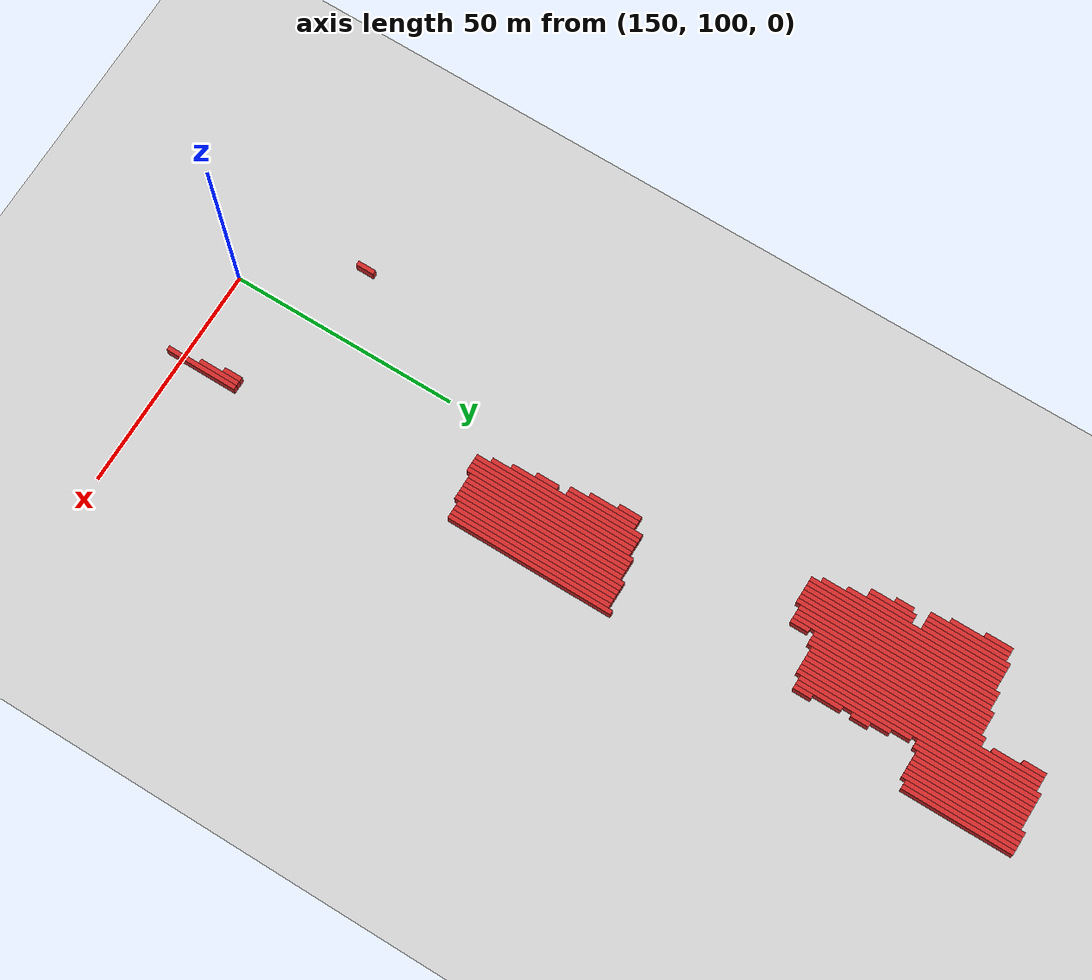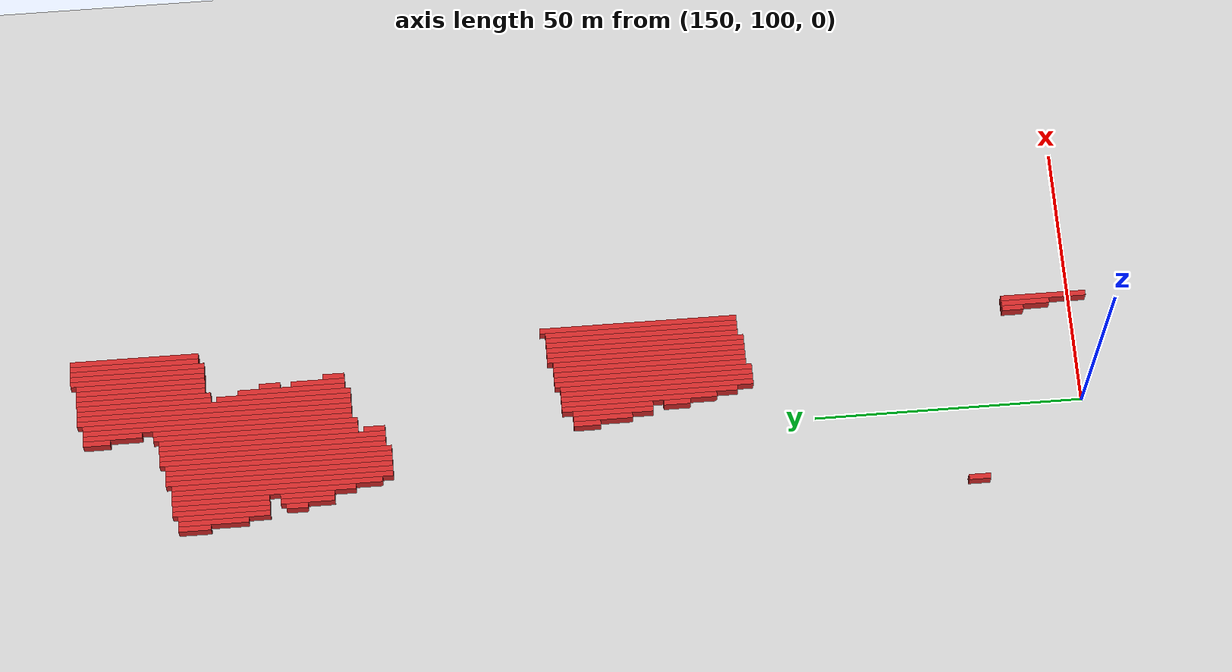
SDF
<sdf version="1.4">
 <world name="1_wall">
  <model name="ground_plane">
   <static>1</static>
   <link name="link">
    <collision name="collision">
     <geometry><plane><normal>0 0 1</normal><size>1000 1000</size></plane></geometry>
     <surface><friction><ode><mu>100</mu><mu2>50</mu2></ode></friction></surface>
    </collision>
    <visual name="visual">
     <cast_shadows>0</cast_shadows>
     <geometry><plane><normal>0 0 1</normal><size>10000 10000</size></plane></geometry>
     <material>
      <script><uri>file://media/materials/scripts/gazebo.material</uri><name>Gazebo/Grey</name></script>
     </material>
    </visual>
    <velocity_decay><linear>0</linear><angular>0</angular></velocity_decay>
   </link>
  </model>
  <model name="Wall_427">
   <static>1</static>
   <link name="Wall_427">
    <collision name="Wall_Collision_427">
     <geometry><box><size>4.0 1.0 2.5</size></box></geometry>
     <pose>0 0 1.25 0 -0 0</pose>
    </collision>
    <visual name="Wall_Visual_427">
     <pose>0 0 1.25 0 -0 0</pose>
     <geometry><box><size>4.0 1.0 2.5</size></box></geometry>
     <material>
      <script><uri>file://media/materials/scripts/gazebo.material</uri><name>Gazebo/Red</name></script>
     </material>
    </visual>
    <velocity_decay><linear>0</linear><angular>0</angular></velocity_decay>
    <pose>135.5 121.0 0 0 0 1.5707963267948966</pose>
   </link>
  </model>
  <model name="Wall_428">
   <static>1</static>
   <link name="Wall_428">
    <collision name="Wall_Collision_428">
     <geometry><box><size>6.0 1.0 2.5</size></box></geometry>
     <pose>0 0 1.25 0 -0 0</pose>
    </collision>
    <visual name="Wall_Visual_428">
     <pose>0 0 1.25 0 -0 0</pose>
     <geometry><box><size>6.0 1.0 2.5</size></box></geometry>
     <material>
      <script><uri>file://media/materials/scripts/gazebo.material</uri><name>Gazebo/Red</name></script>
     </material>
    </visual>
    <velocity_decay><linear>0</linear><angular>0</angular></velocity_decay>
    <pose>136.5 266.0 0 0 0 1.5707963267948966</pose>
   </link>
  </model>
  <model name="Wall_429">
   <static>1</static>
   <link name="Wall_429">
    <collision name="Wall_Collision_429">
     <geometry><box><size>13.0 1.0 2.5</size></box></geometry>
     <pose>0 0 1.25 0 -0 0</pose>
    </collision>
    <visual name="Wall_Visual_429">
     <pose>0 0 1.25 0 -0 0</pose>
     <geometry><box><size>13.0 1.0 2.5</size></box></geometry>
     <material>
      <script><uri>file://media/materials/scripts/gazebo.material</uri><name>Gazebo/Red</name></script>
     </material>
    </visual>
    <velocity_decay><linear>0</linear><angular>0</angular></velocity_decay>
    <pose>137.5 262.5 0 0 0 1.5707963267948966</pose>
   </link>
  </model>
  <model name="Wall_430">
   <static>1</static>
   <link name="Wall_430">
    <collision name="Wall_Collision_430">
     <geometry><box><size>17.0 1.0 2.5</size></box></geometry>
     <pose>0 0 1.25 0 -0 0</pose>
    </collision>
    <visual name="Wall_Visual_430">
     <pose>0 0 1.25 0 -0 0</pose>
     <geometry><box><size>17.0 1.0 2.5</size></box></geometry>
     <material>
      <script><uri>file://media/materials/scripts/gazebo.material</uri><name>Gazebo/Red</name></script>
     </material>
    </visual>
    <velocity_decay><linear>0</linear><angular>0</angular></velocity_decay>
    <pose>138.5 260.5 0 0 0 1.5707963267948966</pose>
   </link>
  </model>
  <model name="Wall_431">
   <static>1</static>
   <link name="Wall_431">
    <collision name="Wall_Collision_431">
     <geometry><box><size>4.0 1.0 2.5</size></box></geometry>
     <pose>0 0 1.25 0 -0 0</pose>
    </collision>
    <visual name="Wall_Visual_431">
     <pose>0 0 1.25 0 -0 0</pose>
     <geometry><box><size>4.0 1.0 2.5</size></box></geometry>
     <material>
      <script><uri>file://media/materials/scripts/gazebo.material</uri><name>Gazebo/Red</name></script>
     </material>
    </visual>
    <velocity_decay><linear>0</linear><angular>0</angular></velocity_decay>
    <pose>139.5 247.0 0 0 0 1.5707963267948966</pose>
   </link>
  </model>
  <model name="Wall_432">
   <static>1</static>
   <link name="Wall_432">
    <collision name="Wall_Collision_432">
     <geometry><box><size>18.0 1.0 2.5</size></box></geometry>
     <pose>0 0 1.25 0 -0 0</pose>
    </collision>
    <visual name="Wall_Visual_432">
     <pose>0 0 1.25 0 -0 0</pose>
     <geometry><box><size>18.0 1.0 2.5</size></box></geometry>
     <material>
      <script><uri>file://media/materials/scripts/gazebo.material</uri><name>Gazebo/Red</name></script>
     </material>
    </visual>
    <velocity_decay><linear>0</linear><angular>0</angular></velocity_decay>
    <pose>139.5 261.0 0 0 0 1.5707963267948966</pose>
   </link>
  </model>
  <model name="Wall_433">
   <static>1</static>
   <link name="Wall_433">
    <collision name="Wall_Collision_433">
     <geometry><box><size>10.0 1.0 2.5</size></box></geometry>
     <pose>0 0 1.25 0 -0 0</pose>
    </collision>
    <visual name="Wall_Visual_433">
     <pose>0 0 1.25 0 -0 0</pose>
     <geometry><box><size>10.0 1.0 2.5</size></box></geometry>
     <material>
      <script><uri>file://media/materials/scripts/gazebo.material</uri><name>Gazebo/Red</name></script>
     </material>
    </visual>
    <velocity_decay><linear>0</linear><angular>0</angular></velocity_decay>
    <pose>140.5 245.0 0 0 0 1.5707963267948966</pose>
   </link>
  </model>
  <model name="Wall_434">
   <static>1</static>
   <link name="Wall_434">
    <collision name="Wall_Collision_434">
     <geometry><box><size>18.0 1.0 2.5</size></box></geometry>
     <pose>0 0 1.25 0 -0 0</pose>
    </collision>
    <visual name="Wall_Visual_434">
     <pose>0 0 1.25 0 -0 0</pose>
     <geometry><box><size>18.0 1.0 2.5</size></box></geometry>
     <material>
      <script><uri>file://media/materials/scripts/gazebo.material</uri><name>Gazebo/Red</name></script>
     </material>
    </visual>
    <velocity_decay><linear>0</linear><angular>0</angular></velocity_decay>
    <pose>140.5 261.0 0 0 0 1.5707963267948966</pose>
   </link>
  </model>
  <model name="Wall_435">
   <static>1</static>
   <link name="Wall_435">
    <collision name="Wall_Collision_435">
     <geometry><box><size>10.0 1.0 2.5</size></box></geometry>
     <pose>0 0 1.25 0 -0 0</pose>
    </collision>
    <visual name="Wall_Visual_435">
     <pose>0 0 1.25 0 -0 0</pose>
     <geometry><box><size>10.0 1.0 2.5</size></box></geometry>
     <material>
      <script><uri>file://media/materials/scripts/gazebo.material</uri><name>Gazebo/Red</name></script>
     </material>
    </visual>
    <velocity_decay><linear>0</linear><angular>0</angular></velocity_decay>
    <pose>141.5 245.0 0 0 0 1.5707963267948966</pose>
   </link>
  </model>
  <model name="Wall_436">
   <static>1</static>
   <link name="Wall_436">
    <collision name="Wall_Collision_436">
     <geometry><box><size>18.0 1.0 2.5</size></box></geometry>
     <pose>0 0 1.25 0 -0 0</pose>
    </collision>
    <visual name="Wall_Visual_436">
     <pose>0 0 1.25 0 -0 0</pose>
     <geometry><box><size>18.0 1.0 2.5</size></box></geometry>
     <material>
      <script><uri>file://media/materials/scripts/gazebo.material</uri><name>Gazebo/Red</name></script>
     </material>
    </visual>
    <velocity_decay><linear>0</linear><angular>0</angular></velocity_decay>
    <pose>141.5 261.0 0 0 0 1.5707963267948966</pose>
   </link>
  </model>
  <model name="Wall_437">
   <static>1</static>
   <link name="Wall_437">
    <collision name="Wall_Collision_437">
     <geometry><box><size>34.0 1.0 2.5</size></box></geometry>
     <pose>0 0 1.25 0 -0 0</pose>
    </collision>
    <visual name="Wall_Visual_437">
     <pose>0 0 1.25 0 -0 0</pose>
     <geometry><box><size>34.0 1.0 2.5</size></box></geometry>
     <material>
      <script><uri>file://media/materials/scripts/gazebo.material</uri><name>Gazebo/Red</name></script>
     </material>
    </visual>
    <velocity_decay><linear>0</linear><angular>0</angular></velocity_decay>
    <pose>142.5 253.0 0 0 0 1.5707963267948966</pose>
   </link>
  </model>
  <model name="Wall_438">
   <static>1</static>
   <link name="Wall_438">
    <collision name="Wall_Collision_438">
     <geometry><box><size>39.0 1.0 2.5</size></box></geometry>
     <pose>0 0 1.25 0 -0 0</pose>
    </collision>
    <visual name="Wall_Visual_438">
     <pose>0 0 1.25 0 -0 0</pose>
     <geometry><box><size>39.0 1.0 2.5</size></box></geometry>
     <material>
      <script><uri>file://media/materials/scripts/gazebo.material</uri><name>Gazebo/Red</name></script>
     </material>
    </visual>
    <velocity_decay><linear>0</linear><angular>0</angular></velocity_decay>
    <pose>143.5 250.5 0 0 0 1.5707963267948966</pose>
   </link>
  </model>
  <model name="Wall_439">
   <static>1</static>
   <link name="Wall_439">
    <collision name="Wall_Collision_439">
     <geometry><box><size>41.0 1.0 2.5</size></box></geometry>
     <pose>0 0 1.25 0 -0 0</pose>
    </collision>
    <visual name="Wall_Visual_439">
     <pose>0 0 1.25 0 -0 0</pose>
     <geometry><box><size>41.0 1.0 2.5</size></box></geometry>
     <material>
      <script><uri>file://media/materials/scripts/gazebo.material</uri><name>Gazebo/Red</name></script>
     </material>
    </visual>
    <velocity_decay><linear>0</linear><angular>0</angular></velocity_decay>
    <pose>144.5 249.5 0 0 0 1.5707963267948966</pose>
   </link>
  </model>
  <model name="Wall_440">
   <static>1</static>
   <link name="Wall_440">
    <collision name="Wall_Collision_440">
     <geometry><box><size>42.0 1.0 2.5</size></box></geometry>
     <pose>0 0 1.25 0 -0 0</pose>
    </collision>
    <visual name="Wall_Visual_440">
     <pose>0 0 1.25 0 -0 0</pose>
     <geometry><box><size>42.0 1.0 2.5</size></box></geometry>
     <material>
      <script><uri>file://media/materials/scripts/gazebo.material</uri><name>Gazebo/Red</name></script>
     </material>
    </visual>
    <velocity_decay><linear>0</linear><angular>0</angular></velocity_decay>
    <pose>145.5 250.0 0 0 0 1.5707963267948966</pose>
   </link>
  </model>
  <model name="Wall_441">
   <static>1</static>
   <link name="Wall_441">
    <collision name="Wall_Collision_441">
     <geometry><box><size>42.0 1.0 2.5</size></box></geometry>
     <pose>0 0 1.25 0 -0 0</pose>
    </collision>
    <visual name="Wall_Visual_441">
     <pose>0 0 1.25 0 -0 0</pose>
     <geometry><box><size>42.0 1.0 2.5</size></box></geometry>
     <material>
      <script><uri>file://media/materials/scripts/gazebo.material</uri><name>Gazebo/Red</name></script>
     </material>
    </visual>
    <velocity_decay><linear>0</linear><angular>0</angular></velocity_decay>
    <pose>146.5 250.0 0 0 0 1.5707963267948966</pose>
   </link>
  </model>
  <model name="Wall_442">
   <static>1</static>
   <link name="Wall_442">
    <collision name="Wall_Collision_442">
     <geometry><box><size>42.0 1.0 2.5</size></box></geometry>
     <pose>0 0 1.25 0 -0 0</pose>
    </collision>
    <visual name="Wall_Visual_442">
     <pose>0 0 1.25 0 -0 0</pose>
     <geometry><box><size>42.0 1.0 2.5</size></box></geometry>
     <material>
      <script><uri>file://media/materials/scripts/gazebo.material</uri><name>Gazebo/Red</name></script>
     </material>
    </visual>
    <velocity_decay><linear>0</linear><angular>0</angular></velocity_decay>
    <pose>147.5 250.0 0 0 0 1.5707963267948966</pose>
   </link>
  </model>
  <model name="Wall_443">
   <static>1</static>
   <link name="Wall_443">
    <collision name="Wall_Collision_443">
     <geometry><box><size>42.0 1.0 2.5</size></box></geometry>
     <pose>0 0 1.25 0 -0 0</pose>
    </collision>
    <visual name="Wall_Visual_443">
     <pose>0 0 1.25 0 -0 0</pose>
     <geometry><box><size>42.0 1.0 2.5</size></box></geometry>
     <material>
      <script><uri>file://media/materials/scripts/gazebo.material</uri><name>Gazebo/Red</name></script>
     </material>
    </visual>
    <velocity_decay><linear>0</linear><angular>0</angular></velocity_decay>
    <pose>148.5 250.0 0 0 0 1.5707963267948966</pose>
   </link>
  </model>
  <model name="Wall_444">
   <static>1</static>
   <link name="Wall_444">
    <collision name="Wall_Collision_444">
     <geometry><box><size>43.0 1.0 2.5</size></box></geometry>
     <pose>0 0 1.25 0 -0 0</pose>
    </collision>
    <visual name="Wall_Visual_444">
     <pose>0 0 1.25 0 -0 0</pose>
     <geometry><box><size>43.0 1.0 2.5</size></box></geometry>
     <material>
      <script><uri>file://media/materials/scripts/gazebo.material</uri><name>Gazebo/Red</name></script>
     </material>
    </visual>
    <velocity_decay><linear>0</linear><angular>0</angular></velocity_decay>
    <pose>149.5 250.5 0 0 0 1.5707963267948966</pose>
   </link>
  </model>
  <model name="Wall_445">
   <static>1</static>
   <link name="Wall_445">
    <collision name="Wall_Collision_445">
     <geometry><box><size>42.0 1.0 2.5</size></box></geometry>
     <pose>0 0 1.25 0 -0 0</pose>
    </collision>
    <visual name="Wall_Visual_445">
     <pose>0 0 1.25 0 -0 0</pose>
     <geometry><box><size>42.0 1.0 2.5</size></box></geometry>
     <material>
      <script><uri>file://media/materials/scripts/gazebo.material</uri><name>Gazebo/Red</name></script>
     </material>
    </visual>
    <velocity_decay><linear>0</linear><angular>0</angular></velocity_decay>
    <pose>150.5 251.0 0 0 0 1.5707963267948966</pose>
   </link>
  </model>
  <model name="Wall_446">
   <static>1</static>
   <link name="Wall_446">
    <collision name="Wall_Collision_446">
     <geometry><box><size>5.0 1.0 2.5</size></box></geometry>
     <pose>0 0 1.25 0 -0 0</pose>
    </collision>
    <visual name="Wall_Visual_446">
     <pose>0 0 1.25 0 -0 0</pose>
     <geometry><box><size>5.0 1.0 2.5</size></box></geometry>
     <material>
      <script><uri>file://media/materials/scripts/gazebo.material</uri><name>Gazebo/Red</name></script>
     </material>
    </visual>
    <velocity_decay><linear>0</linear><angular>0</angular></velocity_decay>
    <pose>151.5 192.5 0 0 0 1.5707963267948966</pose>
   </link>
  </model>
  <model name="Wall_447">
   <static>1</static>
   <link name="Wall_447">
    <collision name="Wall_Collision_447">
     <geometry><box><size>42.0 1.0 2.5</size></box></geometry>
     <pose>0 0 1.25 0 -0 0</pose>
    </collision>
    <visual name="Wall_Visual_447">
     <pose>0 0 1.25 0 -0 0</pose>
     <geometry><box><size>42.0 1.0 2.5</size></box></geometry>
     <material>
      <script><uri>file://media/materials/scripts/gazebo.material</uri><name>Gazebo/Red</name></script>
     </material>
    </visual>
    <velocity_decay><linear>0</linear><angular>0</angular></velocity_decay>
    <pose>151.5 251.0 0 0 0 1.5707963267948966</pose>
   </link>
  </model>
  <model name="Wall_448">
   <static>1</static>
   <link name="Wall_448">
    <collision name="Wall_Collision_448">
     <geometry><box><size>11.0 1.0 2.5</size></box></geometry>
     <pose>0 0 1.25 0 -0 0</pose>
    </collision>
    <visual name="Wall_Visual_448">
     <pose>0 0 1.25 0 -0 0</pose>
     <geometry><box><size>11.0 1.0 2.5</size></box></geometry>
     <material>
      <script><uri>file://media/materials/scripts/gazebo.material</uri><name>Gazebo/Red</name></script>
     </material>
    </visual>
    <velocity_decay><linear>0</linear><angular>0</angular></velocity_decay>
    <pose>152.5 189.5 0 0 0 1.5707963267948966</pose>
   </link>
  </model>
  <model name="Wall_449">
   <static>1</static>
   <link name="Wall_449">
    <collision name="Wall_Collision_449">
     <geometry><box><size>42.0 1.0 2.5</size></box></geometry>
     <pose>0 0 1.25 0 -0 0</pose>
    </collision>
    <visual name="Wall_Visual_449">
     <pose>0 0 1.25 0 -0 0</pose>
     <geometry><box><size>42.0 1.0 2.5</size></box></geometry>
     <material>
      <script><uri>file://media/materials/scripts/gazebo.material</uri><name>Gazebo/Red</name></script>
     </material>
    </visual>
    <velocity_decay><linear>0</linear><angular>0</angular></velocity_decay>
    <pose>152.5 251.0 0 0 0 1.5707963267948966</pose>
   </link>
  </model>
  <model name="Wall_450">
   <static>1</static>
   <link name="Wall_450">
    <collision name="Wall_Collision_450">
     <geometry><box><size>15.0 1.0 2.5</size></box></geometry>
     <pose>0 0 1.25 0 -0 0</pose>
    </collision>
    <visual name="Wall_Visual_450">
     <pose>0 0 1.25 0 -0 0</pose>
     <geometry><box><size>15.0 1.0 2.5</size></box></geometry>
     <material>
      <script><uri>file://media/materials/scripts/gazebo.material</uri><name>Gazebo/Red</name></script>
     </material>
    </visual>
    <velocity_decay><linear>0</linear><angular>0</angular></velocity_decay>
    <pose>153.5 187.5 0 0 0 1.5707963267948966</pose>
   </link>
  </model>
  <model name="Wall_451">
   <static>1</static>
   <link name="Wall_451">
    <collision name="Wall_Collision_451">
     <geometry><box><size>4.0 1.0 2.5</size></box></geometry>
     <pose>0 0 1.25 0 -0 0</pose>
    </collision>
    <visual name="Wall_Visual_451">
     <pose>0 0 1.25 0 -0 0</pose>
     <geometry><box><size>4.0 1.0 2.5</size></box></geometry>
     <material>
      <script><uri>file://media/materials/scripts/gazebo.material</uri><name>Gazebo/Red</name></script>
     </material>
    </visual>
    <velocity_decay><linear>0</linear><angular>0</angular></velocity_decay>
    <pose>153.5 232.0 0 0 0 1.5707963267948966</pose>
   </link>
  </model>
  <model name="Wall_452">
   <static>1</static>
   <link name="Wall_452">
    <collision name="Wall_Collision_452">
     <geometry><box><size>37.0 1.0 2.5</size></box></geometry>
     <pose>0 0 1.25 0 -0 0</pose>
    </collision>
    <visual name="Wall_Visual_452">
     <pose>0 0 1.25 0 -0 0</pose>
     <geometry><box><size>37.0 1.0 2.5</size></box></geometry>
     <material>
      <script><uri>file://media/materials/scripts/gazebo.material</uri><name>Gazebo/Red</name></script>
     </material>
    </visual>
    <velocity_decay><linear>0</linear><angular>0</angular></velocity_decay>
    <pose>153.5 253.5 0 0 0 1.5707963267948966</pose>
   </link>
  </model>
  <model name="Wall_453">
   <static>1</static>
   <link name="Wall_453">
    <collision name="Wall_Collision_453">
     <geometry><box><size>5.0 1.0 2.5</size></box></geometry>
     <pose>0 0 1.25 0 -0 0</pose>
    </collision>
    <visual name="Wall_Visual_453">
     <pose>0 0 1.25 0 -0 0</pose>
     <geometry><box><size>5.0 1.0 2.5</size></box></geometry>
     <material>
      <script><uri>file://media/materials/scripts/gazebo.material</uri><name>Gazebo/Red</name></script>
     </material>
    </visual>
    <velocity_decay><linear>0</linear><angular>0</angular></velocity_decay>
    <pose>154.5 175.5 0 0 0 1.5707963267948966</pose>
   </link>
  </model>
  <model name="Wall_454">
   <static>1</static>
   <link name="Wall_454">
    <collision name="Wall_Collision_454">
     <geometry><box><size>17.0 1.0 2.5</size></box></geometry>
     <pose>0 0 1.25 0 -0 0</pose>
    </collision>
    <visual name="Wall_Visual_454">
     <pose>0 0 1.25 0 -0 0</pose>
     <geometry><box><size>17.0 1.0 2.5</size></box></geometry>
     <material>
      <script><uri>file://media/materials/scripts/gazebo.material</uri><name>Gazebo/Red</name></script>
     </material>
    </visual>
    <velocity_decay><linear>0</linear><angular>0</angular></velocity_decay>
    <pose>154.5 188.5 0 0 0 1.5707963267948966</pose>
   </link>
  </model>
  <model name="Wall_455">
   <static>1</static>
   <link name="Wall_455">
    <collision name="Wall_Collision_455">
     <geometry><box><size>38.0 1.0 2.5</size></box></geometry>
     <pose>0 0 1.25 0 -0 0</pose>
    </collision>
    <visual name="Wall_Visual_455">
     <pose>0 0 1.25 0 -0 0</pose>
     <geometry><box><size>38.0 1.0 2.5</size></box></geometry>
     <material>
      <script><uri>file://media/materials/scripts/gazebo.material</uri><name>Gazebo/Red</name></script>
     </material>
    </visual>
    <velocity_decay><linear>0</linear><angular>0</angular></velocity_decay>
    <pose>154.5 254.0 0 0 0 1.5707963267948966</pose>
   </link>
  </model>
  <model name="Wall_456">
   <static>1</static>
   <link name="Wall_456">
    <collision name="Wall_Collision_456">
     <geometry><box><size>5.0 1.0 2.5</size></box></geometry>
     <pose>0 0 1.25 0 -0 0</pose>
    </collision>
    <visual name="Wall_Visual_456">
     <pose>0 0 1.25 0 -0 0</pose>
     <geometry><box><size>5.0 1.0 2.5</size></box></geometry>
     <material>
      <script><uri>file://media/materials/scripts/gazebo.material</uri><name>Gazebo/Red</name></script>
     </material>
    </visual>
    <velocity_decay><linear>0</linear><angular>0</angular></velocity_decay>
    <pose>154.5 283.5 0 0 0 1.5707963267948966</pose>
   </link>
  </model>
  <model name="Wall_457">
   <static>1</static>
   <link name="Wall_457">
    <collision name="Wall_Collision_457">
     <geometry><box><size>29.0 1.0 2.5</size></box></geometry>
     <pose>0 0 1.25 0 -0 0</pose>
    </collision>
    <visual name="Wall_Visual_457">
     <pose>0 0 1.25 0 -0 0</pose>
     <geometry><box><size>29.0 1.0 2.5</size></box></geometry>
     <material>
      <script><uri>file://media/materials/scripts/gazebo.material</uri><name>Gazebo/Red</name></script>
     </material>
    </visual>
    <velocity_decay><linear>0</linear><angular>0</angular></velocity_decay>
    <pose>155.5 182.5 0 0 0 1.5707963267948966</pose>
   </link>
  </model>
  <model name="Wall_458">
   <static>1</static>
   <link name="Wall_458">
    <collision name="Wall_Collision_458">
     <geometry><box><size>38.0 1.0 2.5</size></box></geometry>
     <pose>0 0 1.25 0 -0 0</pose>
    </collision>
    <visual name="Wall_Visual_458">
     <pose>0 0 1.25 0 -0 0</pose>
     <geometry><box><size>38.0 1.0 2.5</size></box></geometry>
     <material>
      <script><uri>file://media/materials/scripts/gazebo.material</uri><name>Gazebo/Red</name></script>
     </material>
    </visual>
    <velocity_decay><linear>0</linear><angular>0</angular></velocity_decay>
    <pose>155.5 254.0 0 0 0 1.5707963267948966</pose>
   </link>
  </model>
  <model name="Wall_459">
   <static>1</static>
   <link name="Wall_459">
    <collision name="Wall_Collision_459">
     <geometry><box><size>11.0 1.0 2.5</size></box></geometry>
     <pose>0 0 1.25 0 -0 0</pose>
    </collision>
    <visual name="Wall_Visual_459">
     <pose>0 0 1.25 0 -0 0</pose>
     <geometry><box><size>11.0 1.0 2.5</size></box></geometry>
     <material>
      <script><uri>file://media/materials/scripts/gazebo.material</uri><name>Gazebo/Red</name></script>
     </material>
    </visual>
    <velocity_decay><linear>0</linear><angular>0</angular></velocity_decay>
    <pose>155.5 280.5 0 0 0 1.5707963267948966</pose>
   </link>
  </model>
  <model name="Wall_460">
   <static>1</static>
   <link name="Wall_460">
    <collision name="Wall_Collision_460">
     <geometry><box><size>33.0 1.0 2.5</size></box></geometry>
     <pose>0 0 1.25 0 -0 0</pose>
    </collision>
    <visual name="Wall_Visual_460">
     <pose>0 0 1.25 0 -0 0</pose>
     <geometry><box><size>33.0 1.0 2.5</size></box></geometry>
     <material>
      <script><uri>file://media/materials/scripts/gazebo.material</uri><name>Gazebo/Red</name></script>
     </material>
    </visual>
    <velocity_decay><linear>0</linear><angular>0</angular></velocity_decay>
    <pose>156.5 180.5 0 0 0 1.5707963267948966</pose>
   </link>
  </model>
  <model name="Wall_461">
   <static>1</static>
   <link name="Wall_461">
    <collision name="Wall_Collision_461">
     <geometry><box><size>50.0 1.0 2.5</size></box></geometry>
     <pose>0 0 1.25 0 -0 0</pose>
    </collision>
    <visual name="Wall_Visual_461">
     <pose>0 0 1.25 0 -0 0</pose>
     <geometry><box><size>50.0 1.0 2.5</size></box></geometry>
     <material>
      <script><uri>file://media/materials/scripts/gazebo.material</uri><name>Gazebo/Red</name></script>
     </material>
    </visual>
    <velocity_decay><linear>0</linear><angular>0</angular></velocity_decay>
    <pose>156.5 261.0 0 0 0 1.5707963267948966</pose>
   </link>
  </model>
  <model name="Wall_462">
   <static>1</static>
   <link name="Wall_462">
    <collision name="Wall_Collision_462">
     <geometry><box><size>36.0 1.0 2.5</size></box></geometry>
     <pose>0 0 1.25 0 -0 0</pose>
    </collision>
    <visual name="Wall_Visual_462">
     <pose>0 0 1.25 0 -0 0</pose>
     <geometry><box><size>36.0 1.0 2.5</size></box></geometry>
     <material>
      <script><uri>file://media/materials/scripts/gazebo.material</uri><name>Gazebo/Red</name></script>
     </material>
    </visual>
    <velocity_decay><linear>0</linear><angular>0</angular></velocity_decay>
    <pose>157.5 179.0 0 0 0 1.5707963267948966</pose>
   </link>
  </model>
  <model name="Wall_463">
   <static>1</static>
   <link name="Wall_463">
    <collision name="Wall_Collision_463">
     <geometry><box><size>50.0 1.0 2.5</size></box></geometry>
     <pose>0 0 1.25 0 -0 0</pose>
    </collision>
    <visual name="Wall_Visual_463">
     <pose>0 0 1.25 0 -0 0</pose>
     <geometry><box><size>50.0 1.0 2.5</size></box></geometry>
     <material>
      <script><uri>file://media/materials/scripts/gazebo.material</uri><name>Gazebo/Red</name></script>
     </material>
    </visual>
    <velocity_decay><linear>0</linear><angular>0</angular></velocity_decay>
    <pose>157.5 261.0 0 0 0 1.5707963267948966</pose>
   </link>
  </model>
  <model name="Wall_464">
   <static>1</static>
   <link name="Wall_464">
    <collision name="Wall_Collision_464">
     <geometry><box><size>36.0 1.0 2.5</size></box></geometry>
     <pose>0 0 1.25 0 -0 0</pose>
    </collision>
    <visual name="Wall_Visual_464">
     <pose>0 0 1.25 0 -0 0</pose>
     <geometry><box><size>36.0 1.0 2.5</size></box></geometry>
     <material>
      <script><uri>file://media/materials/scripts/gazebo.material</uri><name>Gazebo/Red</name></script>
     </material>
    </visual>
    <velocity_decay><linear>0</linear><angular>0</angular></velocity_decay>
    <pose>158.5 179.0 0 0 0 1.5707963267948966</pose>
   </link>
  </model>
  <model name="Wall_465">
   <static>1</static>
   <link name="Wall_465">
    <collision name="Wall_Collision_465">
     <geometry><box><size>51.0 1.0 2.5</size></box></geometry>
     <pose>0 0 1.25 0 -0 0</pose>
    </collision>
    <visual name="Wall_Visual_465">
     <pose>0 0 1.25 0 -0 0</pose>
     <geometry><box><size>51.0 1.0 2.5</size></box></geometry>
     <material>
      <script><uri>file://media/materials/scripts/gazebo.material</uri><name>Gazebo/Red</name></script>
     </material>
    </visual>
    <velocity_decay><linear>0</linear><angular>0</angular></velocity_decay>
    <pose>158.5 261.5 0 0 0 1.5707963267948966</pose>
   </link>
  </model>
  <model name="Wall_466">
   <static>1</static>
   <link name="Wall_466">
    <collision name="Wall_Collision_466">
     <geometry><box><size>37.0 1.0 2.5</size></box></geometry>
     <pose>0 0 1.25 0 -0 0</pose>
    </collision>
    <visual name="Wall_Visual_466">
     <pose>0 0 1.25 0 -0 0</pose>
     <geometry><box><size>37.0 1.0 2.5</size></box></geometry>
     <material>
      <script><uri>file://media/materials/scripts/gazebo.material</uri><name>Gazebo/Red</name></script>
     </material>
    </visual>
    <velocity_decay><linear>0</linear><angular>0</angular></velocity_decay>
    <pose>159.5 179.5 0 0 0 1.5707963267948966</pose>
   </link>
  </model>
  <model name="Wall_467">
   <static>1</static>
   <link name="Wall_467">
    <collision name="Wall_Collision_467">
     <geometry><box><size>51.0 1.0 2.5</size></box></geometry>
     <pose>0 0 1.25 0 -0 0</pose>
    </collision>
    <visual name="Wall_Visual_467">
     <pose>0 0 1.25 0 -0 0</pose>
     <geometry><box><size>51.0 1.0 2.5</size></box></geometry>
     <material>
      <script><uri>file://media/materials/scripts/gazebo.material</uri><name>Gazebo/Red</name></script>
     </material>
    </visual>
    <velocity_decay><linear>0</linear><angular>0</angular></velocity_decay>
    <pose>159.5 261.5 0 0 0 1.5707963267948966</pose>
   </link>
  </model>
  <model name="Wall_468">
   <static>1</static>
   <link name="Wall_468">
    <collision name="Wall_Collision_468">
     <geometry><box><size>37.0 1.0 2.5</size></box></geometry>
     <pose>0 0 1.25 0 -0 0</pose>
    </collision>
    <visual name="Wall_Visual_468">
     <pose>0 0 1.25 0 -0 0</pose>
     <geometry><box><size>37.0 1.0 2.5</size></box></geometry>
     <material>
      <script><uri>file://media/materials/scripts/gazebo.material</uri><name>Gazebo/Red</name></script>
     </material>
    </visual>
    <velocity_decay><linear>0</linear><angular>0</angular></velocity_decay>
    <pose>160.5 179.5 0 0 0 1.5707963267948966</pose>
   </link>
  </model>
  <model name="Wall_469">
   <static>1</static>
   <link name="Wall_469">
    <collision name="Wall_Collision_469">
     <geometry><box><size>51.0 1.0 2.5</size></box></geometry>
     <pose>0 0 1.25 0 -0 0</pose>
    </collision>
    <visual name="Wall_Visual_469">
     <pose>0 0 1.25 0 -0 0</pose>
     <geometry><box><size>51.0 1.0 2.5</size></box></geometry>
     <material>
      <script><uri>file://media/materials/scripts/gazebo.material</uri><name>Gazebo/Red</name></script>
     </material>
    </visual>
    <velocity_decay><linear>0</linear><angular>0</angular></velocity_decay>
    <pose>160.5 261.5 0 0 0 1.5707963267948966</pose>
   </link>
  </model>
  <model name="Wall_470">
   <static>1</static>
   <link name="Wall_470">
    <collision name="Wall_Collision_470">
     <geometry><box><size>36.0 1.0 2.5</size></box></geometry>
     <pose>0 0 1.25 0 -0 0</pose>
    </collision>
    <visual name="Wall_Visual_470">
     <pose>0 0 1.25 0 -0 0</pose>
     <geometry><box><size>36.0 1.0 2.5</size></box></geometry>
     <material>
      <script><uri>file://media/materials/scripts/gazebo.material</uri><name>Gazebo/Red</name></script>
     </material>
    </visual>
    <velocity_decay><linear>0</linear><angular>0</angular></velocity_decay>
    <pose>161.5 180.0 0 0 0 1.5707963267948966</pose>
   </link>
  </model>
  <model name="Wall_471">
   <static>1</static>
   <link name="Wall_471">
    <collision name="Wall_Collision_471">
     <geometry><box><size>25.0 1.0 2.5</size></box></geometry>
     <pose>0 0 1.25 0 -0 0</pose>
    </collision>
    <visual name="Wall_Visual_471">
     <pose>0 0 1.25 0 -0 0</pose>
     <geometry><box><size>25.0 1.0 2.5</size></box></geometry>
     <material>
      <script><uri>file://media/materials/scripts/gazebo.material</uri><name>Gazebo/Red</name></script>
     </material>
    </visual>
    <velocity_decay><linear>0</linear><angular>0</angular></velocity_decay>
    <pose>161.5 248.5 0 0 0 1.5707963267948966</pose>
   </link>
  </model>
  <model name="Wall_472">
   <static>1</static>
   <link name="Wall_472">
    <collision name="Wall_Collision_472">
     <geometry><box><size>25.0 1.0 2.5</size></box></geometry>
     <pose>0 0 1.25 0 -0 0</pose>
    </collision>
    <visual name="Wall_Visual_472">
     <pose>0 0 1.25 0 -0 0</pose>
     <geometry><box><size>25.0 1.0 2.5</size></box></geometry>
     <material>
      <script><uri>file://media/materials/scripts/gazebo.material</uri><name>Gazebo/Red</name></script>
     </material>
    </visual>
    <velocity_decay><linear>0</linear><angular>0</angular></velocity_decay>
    <pose>161.5 274.5 0 0 0 1.5707963267948966</pose>
   </link>
  </model>
  <model name="Wall_473">
   <static>1</static>
   <link name="Wall_473">
    <collision name="Wall_Collision_473">
     <geometry><box><size>36.0 1.0 2.5</size></box></geometry>
     <pose>0 0 1.25 0 -0 0</pose>
    </collision>
    <visual name="Wall_Visual_473">
     <pose>0 0 1.25 0 -0 0</pose>
     <geometry><box><size>36.0 1.0 2.5</size></box></geometry>
     <material>
      <script><uri>file://media/materials/scripts/gazebo.material</uri><name>Gazebo/Red</name></script>
     </material>
    </visual>
    <velocity_decay><linear>0</linear><angular>0</angular></velocity_decay>
    <pose>162.5 180.0 0 0 0 1.5707963267948966</pose>
   </link>
  </model>
  <model name="Wall_474">
   <static>1</static>
   <link name="Wall_474">
    <collision name="Wall_Collision_474">
     <geometry><box><size>20.0 1.0 2.5</size></box></geometry>
     <pose>0 0 1.25 0 -0 0</pose>
    </collision>
    <visual name="Wall_Visual_474">
     <pose>0 0 1.25 0 -0 0</pose>
     <geometry><box><size>20.0 1.0 2.5</size></box></geometry>
     <material>
      <script><uri>file://media/materials/scripts/gazebo.material</uri><name>Gazebo/Red</name></script>
     </material>
    </visual>
    <velocity_decay><linear>0</linear><angular>0</angular></velocity_decay>
    <pose>162.5 247.0 0 0 0 1.5707963267948966</pose>
   </link>
  </model>
  <model name="Wall_475">
   <static>1</static>
   <link name="Wall_475">
    <collision name="Wall_Collision_475">
     <geometry><box><size>25.0 1.0 2.5</size></box></geometry>
     <pose>0 0 1.25 0 -0 0</pose>
    </collision>
    <visual name="Wall_Visual_475">
     <pose>0 0 1.25 0 -0 0</pose>
     <geometry><box><size>25.0 1.0 2.5</size></box></geometry>
     <material>
      <script><uri>file://media/materials/scripts/gazebo.material</uri><name>Gazebo/Red</name></script>
     </material>
    </visual>
    <velocity_decay><linear>0</linear><angular>0</angular></velocity_decay>
    <pose>162.5 274.5 0 0 0 1.5707963267948966</pose>
   </link>
  </model>
  <model name="Wall_476">
   <static>1</static>
   <link name="Wall_476">
    <collision name="Wall_Collision_476">
     <geometry><box><size>36.0 1.0 2.5</size></box></geometry>
     <pose>0 0 1.25 0 -0 0</pose>
    </collision>
    <visual name="Wall_Visual_476">
     <pose>0 0 1.25 0 -0 0</pose>
     <geometry><box><size>36.0 1.0 2.5</size></box></geometry>
     <material>
      <script><uri>file://media/materials/scripts/gazebo.material</uri><name>Gazebo/Red</name></script>
     </material>
    </visual>
    <velocity_decay><linear>0</linear><angular>0</angular></velocity_decay>
    <pose>163.5 180.0 0 0 0 1.5707963267948966</pose>
   </link>
  </model>
  <model name="Wall_477">
   <static>1</static>
   <link name="Wall_477">
    <collision name="Wall_Collision_477">
     <geometry><box><size>10.0 1.0 2.5</size></box></geometry>
     <pose>0 0 1.25 0 -0 0</pose>
    </collision>
    <visual name="Wall_Visual_477">
     <pose>0 0 1.25 0 -0 0</pose>
     <geometry><box><size>10.0 1.0 2.5</size></box></geometry>
     <material>
      <script><uri>file://media/materials/scripts/gazebo.material</uri><name>Gazebo/Red</name></script>
     </material>
    </visual>
    <velocity_decay><linear>0</linear><angular>0</angular></velocity_decay>
    <pose>163.5 242.0 0 0 0 1.5707963267948966</pose>
   </link>
  </model>
  <model name="Wall_478">
   <static>1</static>
   <link name="Wall_478">
    <collision name="Wall_Collision_478">
     <geometry><box><size>4.0 1.0 2.5</size></box></geometry>
     <pose>0 0 1.25 0 -0 0</pose>
    </collision>
    <visual name="Wall_Visual_478">
     <pose>0 0 1.25 0 -0 0</pose>
     <geometry><box><size>4.0 1.0 2.5</size></box></geometry>
     <material>
      <script><uri>file://media/materials/scripts/gazebo.material</uri><name>Gazebo/Red</name></script>
     </material>
    </visual>
    <velocity_decay><linear>0</linear><angular>0</angular></velocity_decay>
    <pose>163.5 251.0 0 0 0 1.5707963267948966</pose>
   </link>
  </model>
  <model name="Wall_479">
   <static>1</static>
   <link name="Wall_479">
    <collision name="Wall_Collision_479">
     <geometry><box><size>24.0 1.0 2.5</size></box></geometry>
     <pose>0 0 1.25 0 -0 0</pose>
    </collision>
    <visual name="Wall_Visual_479">
     <pose>0 0 1.25 0 -0 0</pose>
     <geometry><box><size>24.0 1.0 2.5</size></box></geometry>
     <material>
      <script><uri>file://media/materials/scripts/gazebo.material</uri><name>Gazebo/Red</name></script>
     </material>
    </visual>
    <velocity_decay><linear>0</linear><angular>0</angular></velocity_decay>
    <pose>163.5 275.0 0 0 0 1.5707963267948966</pose>
   </link>
  </model>
  <model name="Wall_480">
   <static>1</static>
   <link name="Wall_480">
    <collision name="Wall_Collision_480">
     <geometry><box><size>37.0 1.0 2.5</size></box></geometry>
     <pose>0 0 1.25 0 -0 0</pose>
    </collision>
    <visual name="Wall_Visual_480">
     <pose>0 0 1.25 0 -0 0</pose>
     <geometry><box><size>37.0 1.0 2.5</size></box></geometry>
     <material>
      <script><uri>file://media/materials/scripts/gazebo.material</uri><name>Gazebo/Red</name></script>
     </material>
    </visual>
    <velocity_decay><linear>0</linear><angular>0</angular></velocity_decay>
    <pose>164.5 180.5 0 0 0 1.5707963267948966</pose>
   </link>
  </model>
  <model name="Wall_481">
   <static>1</static>
   <link name="Wall_481">
    <collision name="Wall_Collision_481">
     <geometry><box><size>4.0 1.0 2.5</size></box></geometry>
     <pose>0 0 1.25 0 -0 0</pose>
    </collision>
    <visual name="Wall_Visual_481">
     <pose>0 0 1.25 0 -0 0</pose>
     <geometry><box><size>4.0 1.0 2.5</size></box></geometry>
     <material>
      <script><uri>file://media/materials/scripts/gazebo.material</uri><name>Gazebo/Red</name></script>
     </material>
    </visual>
    <velocity_decay><linear>0</linear><angular>0</angular></velocity_decay>
    <pose>164.5 239.0 0 0 0 1.5707963267948966</pose>
   </link>
  </model>
  <model name="Wall_482">
   <static>1</static>
   <link name="Wall_482">
    <collision name="Wall_Collision_482">
     <geometry><box><size>24.0 1.0 2.5</size></box></geometry>
     <pose>0 0 1.25 0 -0 0</pose>
    </collision>
    <visual name="Wall_Visual_482">
     <pose>0 0 1.25 0 -0 0</pose>
     <geometry><box><size>24.0 1.0 2.5</size></box></geometry>
     <material>
      <script><uri>file://media/materials/scripts/gazebo.material</uri><name>Gazebo/Red</name></script>
     </material>
    </visual>
    <velocity_decay><linear>0</linear><angular>0</angular></velocity_decay>
    <pose>164.5 275.0 0 0 0 1.5707963267948966</pose>
   </link>
  </model>
  <model name="Wall_483">
   <static>1</static>
   <link name="Wall_483">
    <collision name="Wall_Collision_483">
     <geometry><box><size>37.0 1.0 2.5</size></box></geometry>
     <pose>0 0 1.25 0 -0 0</pose>
    </collision>
    <visual name="Wall_Visual_483">
     <pose>0 0 1.25 0 -0 0</pose>
     <geometry><box><size>37.0 1.0 2.5</size></box></geometry>
     <material>
      <script><uri>file://media/materials/scripts/gazebo.material</uri><name>Gazebo/Red</name></script>
     </material>
    </visual>
    <velocity_decay><linear>0</linear><angular>0</angular></velocity_decay>
    <pose>165.5 180.5 0 0 0 1.5707963267948966</pose>
   </link>
  </model>
  <model name="Wall_484">
   <static>1</static>
   <link name="Wall_484">
    <collision name="Wall_Collision_484">
     <geometry><box><size>24.0 1.0 2.5</size></box></geometry>
     <pose>0 0 1.25 0 -0 0</pose>
    </collision>
    <visual name="Wall_Visual_484">
     <pose>0 0 1.25 0 -0 0</pose>
     <geometry><box><size>24.0 1.0 2.5</size></box></geometry>
     <material>
      <script><uri>file://media/materials/scripts/gazebo.material</uri><name>Gazebo/Red</name></script>
     </material>
    </visual>
    <velocity_decay><linear>0</linear><angular>0</angular></velocity_decay>
    <pose>165.5 275.0 0 0 0 1.5707963267948966</pose>
   </link>
  </model>
  <model name="Wall_485">
   <static>1</static>
   <link name="Wall_485">
    <collision name="Wall_Collision_485">
     <geometry><box><size>37.0 1.0 2.5</size></box></geometry>
     <pose>0 0 1.25 0 -0 0</pose>
    </collision>
    <visual name="Wall_Visual_485">
     <pose>0 0 1.25 0 -0 0</pose>
     <geometry><box><size>37.0 1.0 2.5</size></box></geometry>
     <material>
      <script><uri>file://media/materials/scripts/gazebo.material</uri><name>Gazebo/Red</name></script>
     </material>
    </visual>
    <velocity_decay><linear>0</linear><angular>0</angular></velocity_decay>
    <pose>166.5 180.5 0 0 0 1.5707963267948966</pose>
   </link>
  </model>
  <model name="Wall_486">
   <static>1</static>
   <link name="Wall_486">
    <collision name="Wall_Collision_486">
     <geometry><box><size>25.0 1.0 2.5</size></box></geometry>
     <pose>0 0 1.25 0 -0 0</pose>
    </collision>
    <visual name="Wall_Visual_486">
     <pose>0 0 1.25 0 -0 0</pose>
     <geometry><box><size>25.0 1.0 2.5</size></box></geometry>
     <material>
      <script><uri>file://media/materials/scripts/gazebo.material</uri><name>Gazebo/Red</name></script>
     </material>
    </visual>
    <velocity_decay><linear>0</linear><angular>0</angular></velocity_decay>
    <pose>166.5 275.5 0 0 0 1.5707963267948966</pose>
   </link>
  </model>
  <model name="Wall_487">
   <static>1</static>
   <link name="Wall_487">
    <collision name="Wall_Collision_487">
     <geometry><box><size>36.0 1.0 2.5</size></box></geometry>
     <pose>0 0 1.25 0 -0 0</pose>
    </collision>
    <visual name="Wall_Visual_487">
     <pose>0 0 1.25 0 -0 0</pose>
     <geometry><box><size>36.0 1.0 2.5</size></box></geometry>
     <material>
      <script><uri>file://media/materials/scripts/gazebo.material</uri><name>Gazebo/Red</name></script>
     </material>
    </visual>
    <velocity_decay><linear>0</linear><angular>0</angular></velocity_decay>
    <pose>167.5 181.0 0 0 0 1.5707963267948966</pose>
   </link>
  </model>
  <model name="Wall_488">
   <static>1</static>
   <link name="Wall_488">
    <collision name="Wall_Collision_488">
     <geometry><box><size>25.0 1.0 2.5</size></box></geometry>
     <pose>0 0 1.25 0 -0 0</pose>
    </collision>
    <visual name="Wall_Visual_488">
     <pose>0 0 1.25 0 -0 0</pose>
     <geometry><box><size>25.0 1.0 2.5</size></box></geometry>
     <material>
      <script><uri>file://media/materials/scripts/gazebo.material</uri><name>Gazebo/Red</name></script>
     </material>
    </visual>
    <velocity_decay><linear>0</linear><angular>0</angular></velocity_decay>
    <pose>167.5 275.5 0 0 0 1.5707963267948966</pose>
   </link>
  </model>
  <model name="Wall_489">
   <static>1</static>
   <link name="Wall_489">
    <collision name="Wall_Collision_489">
     <geometry><box><size>4.0 1.0 2.5</size></box></geometry>
     <pose>0 0 1.25 0 -0 0</pose>
    </collision>
    <visual name="Wall_Visual_489">
     <pose>0 0 1.25 0 -0 0</pose>
     <geometry><box><size>4.0 1.0 2.5</size></box></geometry>
     <material>
      <script><uri>file://media/materials/scripts/gazebo.material</uri><name>Gazebo/Red</name></script>
     </material>
    </visual>
    <velocity_decay><linear>0</linear><angular>0</angular></velocity_decay>
    <pose>168.5 111.0 0 0 0 1.5707963267948966</pose>
   </link>
  </model>
  <model name="Wall_490">
   <static>1</static>
   <link name="Wall_490">
    <collision name="Wall_Collision_490">
     <geometry><box><size>36.0 1.0 2.5</size></box></geometry>
     <pose>0 0 1.25 0 -0 0</pose>
    </collision>
    <visual name="Wall_Visual_490">
     <pose>0 0 1.25 0 -0 0</pose>
     <geometry><box><size>36.0 1.0 2.5</size></box></geometry>
     <material>
      <script><uri>file://media/materials/scripts/gazebo.material</uri><name>Gazebo/Red</name></script>
     </material>
    </visual>
    <velocity_decay><linear>0</linear><angular>0</angular></velocity_decay>
    <pose>168.5 181.0 0 0 0 1.5707963267948966</pose>
   </link>
  </model>
  <model name="Wall_491">
   <static>1</static>
   <link name="Wall_491">
    <collision name="Wall_Collision_491">
     <geometry><box><size>25.0 1.0 2.5</size></box></geometry>
     <pose>0 0 1.25 0 -0 0</pose>
    </collision>
    <visual name="Wall_Visual_491">
     <pose>0 0 1.25 0 -0 0</pose>
     <geometry><box><size>25.0 1.0 2.5</size></box></geometry>
     <material>
      <script><uri>file://media/materials/scripts/gazebo.material</uri><name>Gazebo/Red</name></script>
     </material>
    </visual>
    <velocity_decay><linear>0</linear><angular>0</angular></velocity_decay>
    <pose>168.5 275.5 0 0 0 1.5707963267948966</pose>
   </link>
  </model>
  <model name="Wall_492">
   <static>1</static>
   <link name="Wall_492">
    <collision name="Wall_Collision_492">
     <geometry><box><size>9.0 1.0 2.5</size></box></geometry>
     <pose>0 0 1.25 0 -0 0</pose>
    </collision>
    <visual name="Wall_Visual_492">
     <pose>0 0 1.25 0 -0 0</pose>
     <geometry><box><size>9.0 1.0 2.5</size></box></geometry>
     <material>
      <script><uri>file://media/materials/scripts/gazebo.material</uri><name>Gazebo/Red</name></script>
     </material>
    </visual>
    <velocity_decay><linear>0</linear><angular>0</angular></velocity_decay>
    <pose>169.5 108.5 0 0 0 1.5707963267948966</pose>
   </link>
  </model>
  <model name="Wall_493">
   <static>1</static>
   <link name="Wall_493">
    <collision name="Wall_Collision_493">
     <geometry><box><size>36.0 1.0 2.5</size></box></geometry>
     <pose>0 0 1.25 0 -0 0</pose>
    </collision>
    <visual name="Wall_Visual_493">
     <pose>0 0 1.25 0 -0 0</pose>
     <geometry><box><size>36.0 1.0 2.5</size></box></geometry>
     <material>
      <script><uri>file://media/materials/scripts/gazebo.material</uri><name>Gazebo/Red</name></script>
     </material>
    </visual>
    <velocity_decay><linear>0</linear><angular>0</angular></velocity_decay>
    <pose>169.5 181.0 0 0 0 1.5707963267948966</pose>
   </link>
  </model>
  <model name="Wall_494">
   <static>1</static>
   <link name="Wall_494">
    <collision name="Wall_Collision_494">
     <geometry><box><size>24.0 1.0 2.5</size></box></geometry>
     <pose>0 0 1.25 0 -0 0</pose>
    </collision>
    <visual name="Wall_Visual_494">
     <pose>0 0 1.25 0 -0 0</pose>
     <geometry><box><size>24.0 1.0 2.5</size></box></geometry>
     <material>
      <script><uri>file://media/materials/scripts/gazebo.material</uri><name>Gazebo/Red</name></script>
     </material>
    </visual>
    <velocity_decay><linear>0</linear><angular>0</angular></velocity_decay>
    <pose>169.5 276.0 0 0 0 1.5707963267948966</pose>
   </link>
  </model>
  <model name="Wall_495">
   <static>1</static>
   <link name="Wall_495">
    <collision name="Wall_Collision_495">
     <geometry><box><size>16.0 1.0 2.5</size></box></geometry>
     <pose>0 0 1.25 0 -0 0</pose>
    </collision>
    <visual name="Wall_Visual_495">
     <pose>0 0 1.25 0 -0 0</pose>
     <geometry><box><size>16.0 1.0 2.5</size></box></geometry>
     <material>
      <script><uri>file://media/materials/scripts/gazebo.material</uri><name>Gazebo/Red</name></script>
     </material>
    </visual>
    <velocity_decay><linear>0</linear><angular>0</angular></velocity_decay>
    <pose>170.5 105.0 0 0 0 1.5707963267948966</pose>
   </link>
  </model>
  <model name="Wall_496">
   <static>1</static>
   <link name="Wall_496">
    <collision name="Wall_Collision_496">
     <geometry><box><size>37.0 1.0 2.5</size></box></geometry>
     <pose>0 0 1.25 0 -0 0</pose>
    </collision>
    <visual name="Wall_Visual_496">
     <pose>0 0 1.25 0 -0 0</pose>
     <geometry><box><size>37.0 1.0 2.5</size></box></geometry>
     <material>
      <script><uri>file://media/materials/scripts/gazebo.material</uri><name>Gazebo/Red</name></script>
     </material>
    </visual>
    <velocity_decay><linear>0</linear><angular>0</angular></velocity_decay>
    <pose>170.5 181.5 0 0 0 1.5707963267948966</pose>
   </link>
  </model>
  <model name="Wall_497">
   <static>1</static>
   <link name="Wall_497">
    <collision name="Wall_Collision_497">
     <geometry><box><size>24.0 1.0 2.5</size></box></geometry>
     <pose>0 0 1.25 0 -0 0</pose>
    </collision>
    <visual name="Wall_Visual_497">
     <pose>0 0 1.25 0 -0 0</pose>
     <geometry><box><size>24.0 1.0 2.5</size></box></geometry>
     <material>
      <script><uri>file://media/materials/scripts/gazebo.material</uri><name>Gazebo/Red</name></script>
     </material>
    </visual>
    <velocity_decay><linear>0</linear><angular>0</angular></velocity_decay>
    <pose>170.5 276.0 0 0 0 1.5707963267948966</pose>
   </link>
  </model>
 </world>
</sdf>
